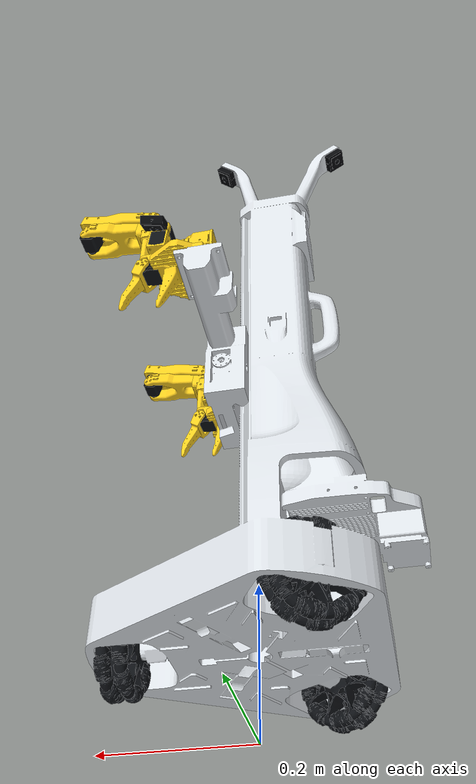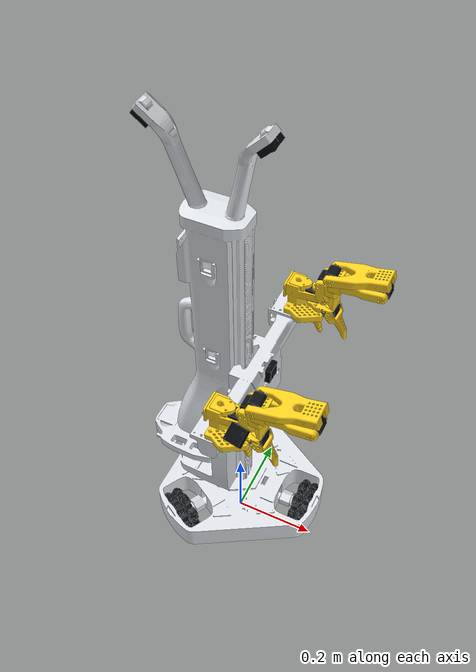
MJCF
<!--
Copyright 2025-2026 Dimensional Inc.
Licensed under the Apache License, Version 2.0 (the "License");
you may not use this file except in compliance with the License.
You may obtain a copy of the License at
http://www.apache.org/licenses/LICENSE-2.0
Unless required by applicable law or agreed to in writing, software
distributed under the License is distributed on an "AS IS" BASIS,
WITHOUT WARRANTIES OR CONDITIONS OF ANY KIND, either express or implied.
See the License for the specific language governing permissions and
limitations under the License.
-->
<!-- Reduced navigation-only model; the manipulation joints are intentionally rigid. -->
<mujoco model="alohamini2_nav">
  <compiler angle="radian" autolimits="true"/>
  <option timestep="0.005" gravity="0 0 -9.81" integrator="implicitfast"/>

  <visual>
    <global azimuth="135" elevation="-25"/>
    <headlight ambient="0.35 0.35 0.35" diffuse="0.7 0.7 0.7"/>
  </visual>

  <default>
    <geom condim="3" solref="0.01 1" solimp="0.9 0.95 0.001"/>
    <default class="cad_visual">
      <geom type="mesh" contype="0" conaffinity="0" group="2" mass="0"/>
    </default>
  </default>

  <asset>
    <material name="cad_white" rgba="0.88 0.9 0.92 1" specular="0.25" shininess="0.4"/>
    <material name="cad_dark" rgba="0.055 0.065 0.08 1" specular="0.2" shininess="0.3"/>
    <material name="cad_camera" rgba="0.025 0.03 0.04 1" specular="0.35" shininess="0.5"/>
    <material name="so101_yellow" rgba="1 0.82 0.12 1" specular="0.2" shininess="0.3"/>
    <mesh name="cad_base_link" file="meshes/base_link.stl"/>
    <mesh name="cad_vertical_link" file="meshes/vertical_link.stl"/>
    <mesh name="cad_chest_camera" file="meshes/chest_camera.stl"/>
    <mesh name="cad_wheel_2" file="meshes/link2_dp.stl"/>
    <mesh name="cad_wheel_3" file="meshes/link3_dp.stl"/>
    <mesh name="cad_wheel_4" file="meshes/link4_dp.stl"/>
    <mesh name="cad_back_camera" file="meshes/back_camera.stl"/>
    <mesh name="cad_front_camera" file="meshes/front_camera.stl"/>
    <mesh name="so101_base_motor_holder" file="meshes/so101_base_motor_holder_so101_v1.stl"/>
    <mesh name="so101_base" file="meshes/so101_base_so101_v2.stl"/>
    <mesh name="so101_motor_holder_base" file="meshes/so101_motor_holder_so101_base_v1.stl"/>
    <mesh name="so101_motor_holder_wrist" file="meshes/so101_motor_holder_so101_wrist_v1.stl"/>
    <mesh name="so101_moving_jaw" file="meshes/so101_moving_jaw_so101_v1.stl"/>
    <mesh name="so101_rotation_pitch" file="meshes/so101_rotation_pitch_so101_v1.stl"/>
    <mesh name="so101_servo_no_horn" file="meshes/so101_sts3215_03a_no_horn_v1.stl"/>
    <mesh name="so101_servo" file="meshes/so101_sts3215_03a_v1.stl"/>
    <mesh name="so101_under_arm" file="meshes/so101_under_arm_so101_v1.stl"/>
    <mesh name="so101_upper_arm" file="meshes/so101_upper_arm_so101_v1.stl"/>
    <mesh name="so101_mounting_plate" file="meshes/so101_waveshare_mounting_plate_so101_v2.stl"/>
    <mesh name="so101_wrist_roll_follower" file="meshes/so101_wrist_roll_follower_so101_v1.stl"/>
    <mesh name="so101_wrist_roll_pitch" file="meshes/so101_wrist_roll_pitch_so101_v2.stl"/>
    <mesh name="cad_wrist_camera" file="meshes/left_camera.stl"/>
  </asset>

  <worldbody>
    <!--
      The source URDF uses +X laterally and -Y forward. This reduced model is
      authored directly in the ROS/DimOS convention: +X forward, +Y left.
    -->
    <body name="base_link" pos="0 0 0.064">
      <freejoint name="root"/>
      <inertial pos="0 0 0.38" mass="18" diaginertia="1.9 1.7 0.8"/>

      <!-- Primitive collision envelope; the detailed CAD below is visual-only. -->
      <geom
        name="base_collision"
        type="box"
        pos="0 0 0.15"
        size="0.22 0.23 0.09"
        rgba="0 0 0 0"
      />
      <geom
        name="ground_skid_collision"
        type="box"
        pos="0 0 -0.014"
        size="0.17 0.17 0.05"
        rgba="0 0 0 0"
        friction="0.05 0.01 0.001"
      />
      <geom
        name="tower_collision"
        type="box"
        pos="-0.04 0 0.63"
        size="0.08 0.19 0.39"
        rgba="0 0 0 0"
      />
      <geom
        name="left_arm_collision"
        type="capsule"
        fromto="0.05 0.19 0.7 0.38 0.19 0.7"
        size="0.055"
        rgba="0 0 0 0"
      />
      <geom
        name="right_arm_collision"
        type="capsule"
        fromto="0.05 -0.19 0.7 0.38 -0.19 0.7"
        size="0.055"
        rgba="0 0 0 0"
      />

      <body name="cad_visual_frame" quat="0.707106781 0 0 0.707106781">
        <geom name="cad_base_link_visual" class="cad_visual" mesh="cad_base_link" material="cad_white"/>

        <body name="cad_vertical_link_body" pos="0 0 0.096196">
          <geom name="cad_vertical_link_visual" class="cad_visual" mesh="cad_vertical_link" material="cad_white"/>
          <body
            name="cad_chest_camera_body"
            pos="-0.000225761876 -0.0690163598 0.447985437"
            quat="0.5 0.5 0.5 -0.5"
          >
            <geom name="cad_chest_camera_visual" class="cad_visual" mesh="cad_chest_camera" material="cad_camera"/>
            <!-- Offset to the lens face; URDF +Z is optical forward. -->
            <camera name="chest_camera" pos="0 0 0.025" xyaxes="0 -1 0 -1 0 0" fovy="69"/>
          </body>

          <body name="cad_left_so101_base_body" pos="0.18726 -0.0599 0.4775" quat="0.707106781 0 0 -0.707106781">
            <geom name="cad_left_so101_base_holder_visual" class="cad_visual" mesh="so101_base_motor_holder" material="so101_yellow" pos="-0.00636471 -9.94414e-05 -0.0024" quat="0.5 0.5 0.5 0.5"/>
            <geom name="cad_left_so101_base_visual" class="cad_visual" mesh="so101_base" material="so101_yellow" pos="-0.00636471 -8.97657e-09 -0.0024" quat="0.5 0.5 0.5 0.5"/>
            <geom name="cad_left_so101_base_servo_visual" class="cad_visual" mesh="so101_servo" material="cad_dark" pos="0.0263353 -8.97657e-09 0.0437"/>
            <geom name="cad_left_so101_mounting_plate_visual" class="cad_visual" mesh="so101_mounting_plate" material="so101_yellow" pos="-0.0309827 -0.000199441 0.0474" quat="0.5 0.5 0.5 0.5"/>
            <body name="cad_left_so101_shoulder_body" pos="0.0388353 -8.97657e-09 0.0624" quat="3.56167e-16 1.22818e-15 -1 -4.14635e-16">
              <geom name="cad_left_so101_shoulder_servo_visual" class="cad_visual" mesh="so101_servo" material="cad_dark" pos="-0.0303992 0.000422241 -0.0417" quat="0.5 0.5 0.5 -0.5"/>
              <geom name="cad_left_so101_motor_holder_base_visual" class="cad_visual" mesh="so101_motor_holder_base" material="so101_yellow" pos="-0.0675992 -0.000177759 0.0158499" quat="0.5 0.5 -0.5 0.5"/>
              <geom name="cad_left_so101_rotation_pitch_visual" class="cad_visual" mesh="so101_rotation_pitch" material="so101_yellow" pos="0.0122008 2.22413e-05 0.0464" quat="0.707107 -0.707107 0 0"/>
              <body name="cad_left_so101_upper_arm_body" pos="-0.0303992 -0.0182778 -0.0542" quat="0.70214304 -0.70214304 -0.0836370253 -0.0836370253">
                <geom name="cad_left_so101_upper_arm_servo_visual" class="cad_visual" mesh="so101_servo" material="cad_dark" pos="-0.11257 -0.0155 0.0187" quat="0 -0.707107 0.707107 0"/>
                <geom name="cad_left_so101_upper_arm_visual" class="cad_visual" mesh="so101_upper_arm" material="so101_yellow" pos="-0.065085 0.012 0.0182" quat="0 1 0 0"/>
                <body name="cad_left_so101_lower_arm_body" pos="-0.11257 -0.028 0" quat="-0.0595665548 0 0 0.998224336">
                  <geom name="cad_left_so101_under_arm_visual" class="cad_visual" mesh="so101_under_arm" material="so101_yellow" pos="-0.0648499 -0.032 0.0182" quat="0 1 0 0"/>
                  <geom name="cad_left_so101_motor_holder_wrist_visual" class="cad_visual" mesh="so101_motor_holder_wrist" material="so101_yellow" pos="-0.0648499 -0.032 0.018" quat="0 1 0 0"/>
                  <geom name="cad_left_so101_lower_arm_servo_visual" class="cad_visual" mesh="so101_servo" material="cad_dark" pos="-0.1224 0.0052 0.0187" quat="0 0 1 0"/>
                  <body name="cad_left_so101_wrist_body" pos="-0.1349 0.0052 0" quat="0.0194019459 0 0 -0.999811765">
                    <geom name="cad_left_so101_wrist_servo_visual" class="cad_visual" mesh="so101_servo_no_horn" material="cad_dark" pos="0 -0.0424 0.0306" quat="0.5 0.5 0.5 -0.5"/>
                    <geom name="cad_left_so101_wrist_roll_pitch_visual" class="cad_visual" mesh="so101_wrist_roll_pitch" material="so101_yellow" pos="0 -0.028 0.0181" quat="0.5 -0.5 -0.5 -0.5"/>
                    <body name="cad_left_so101_gripper_body" pos="0 -0.0611 0.0181" quat="0.0172091082 -0.0172091082 0.706897338 0.706897338">
                      <geom name="cad_left_so101_gripper_servo_visual" class="cad_visual" mesh="so101_servo" material="cad_dark" pos="0.0077 0.0001 -0.0234" quat="0.707107 -0.707107 0 0" group="1"/>
                      <geom name="cad_left_so101_wrist_roll_follower_visual" class="cad_visual" mesh="so101_wrist_roll_follower" material="so101_yellow" pos="0 -0.000218214 0.000949706" quat="0 1 0 0" group="1"/>
                      <body name="cad_left_so101_moving_jaw_body" pos="0.0202 0.0188 -0.0234" quat="0.685124544 0.685124544 -0.174941017 0.174941017">
                        <geom name="cad_left_so101_moving_jaw_visual" class="cad_visual" mesh="so101_moving_jaw" material="so101_yellow" pos="0 0 0.0189" group="1"/>
                      </body>
                      <body name="cad_left_camera_body" pos="0 0.055 0.04" quat="0.292401601 0.952279812 0.0836905016 0.0256975275">
                        <geom name="cad_left_camera_visual" class="cad_visual" mesh="cad_wrist_camera" material="cad_camera"/>
                        <!-- The virtual pinhole sits on the physical camera mesh lens face. -->
                        <camera name="left_camera" pos="0 0 0.022" quat="0 1 0 0" fovy="90"/>
                      </body>
                    </body>
                  </body>
                </body>
              </body>
            </body>
          </body>

          <body name="cad_right_so101_base_body" pos="-0.18726 -0.0599 0.4775" quat="0.707106781 0 0 -0.707106781">
            <geom name="cad_right_so101_base_holder_visual" class="cad_visual" mesh="so101_base_motor_holder" material="so101_yellow" pos="-0.00636471 -9.94414e-05 -0.0024" quat="0.5 0.5 0.5 0.5"/>
            <geom name="cad_right_so101_base_visual" class="cad_visual" mesh="so101_base" material="so101_yellow" pos="-0.00636471 -8.97657e-09 -0.0024" quat="0.5 0.5 0.5 0.5"/>
            <geom name="cad_right_so101_base_servo_visual" class="cad_visual" mesh="so101_servo" material="cad_dark" pos="0.0263353 -8.97657e-09 0.0437"/>
            <geom name="cad_right_so101_mounting_plate_visual" class="cad_visual" mesh="so101_mounting_plate" material="so101_yellow" pos="-0.0309827 -0.000199441 0.0474" quat="0.5 0.5 0.5 0.5"/>
            <body name="cad_right_so101_shoulder_body" pos="0.0388353 -8.97657e-09 0.0624" quat="3.56167e-16 1.22818e-15 -1 -4.14635e-16">
              <geom name="cad_right_so101_shoulder_servo_visual" class="cad_visual" mesh="so101_servo" material="cad_dark" pos="-0.0303992 0.000422241 -0.0417" quat="0.5 0.5 0.5 -0.5"/>
              <geom name="cad_right_so101_motor_holder_base_visual" class="cad_visual" mesh="so101_motor_holder_base" material="so101_yellow" pos="-0.0675992 -0.000177759 0.0158499" quat="0.5 0.5 -0.5 0.5"/>
              <geom name="cad_right_so101_rotation_pitch_visual" class="cad_visual" mesh="so101_rotation_pitch" material="so101_yellow" pos="0.0122008 2.22413e-05 0.0464" quat="0.707107 -0.707107 0 0"/>
              <body name="cad_right_so101_upper_arm_body" pos="-0.0303992 -0.0182778 -0.0542" quat="0.70214304 -0.70214304 -0.0836370253 -0.0836370253">
                <geom name="cad_right_so101_upper_arm_servo_visual" class="cad_visual" mesh="so101_servo" material="cad_dark" pos="-0.11257 -0.0155 0.0187" quat="0 -0.707107 0.707107 0"/>
                <geom name="cad_right_so101_upper_arm_visual" class="cad_visual" mesh="so101_upper_arm" material="so101_yellow" pos="-0.065085 0.012 0.0182" quat="0 1 0 0"/>
                <body name="cad_right_so101_lower_arm_body" pos="-0.11257 -0.028 0" quat="-0.0595665548 0 0 0.998224336">
                  <geom name="cad_right_so101_under_arm_visual" class="cad_visual" mesh="so101_under_arm" material="so101_yellow" pos="-0.0648499 -0.032 0.0182" quat="0 1 0 0"/>
                  <geom name="cad_right_so101_motor_holder_wrist_visual" class="cad_visual" mesh="so101_motor_holder_wrist" material="so101_yellow" pos="-0.0648499 -0.032 0.018" quat="0 1 0 0"/>
                  <geom name="cad_right_so101_lower_arm_servo_visual" class="cad_visual" mesh="so101_servo" material="cad_dark" pos="-0.1224 0.0052 0.0187" quat="0 0 1 0"/>
                  <body name="cad_right_so101_wrist_body" pos="-0.1349 0.0052 0" quat="0.0194019459 0 0 -0.999811765">
                    <geom name="cad_right_so101_wrist_servo_visual" class="cad_visual" mesh="so101_servo_no_horn" material="cad_dark" pos="0 -0.0424 0.0306" quat="0.5 0.5 0.5 -0.5"/>
                    <geom name="cad_right_so101_wrist_roll_pitch_visual" class="cad_visual" mesh="so101_wrist_roll_pitch" material="so101_yellow" pos="0 -0.028 0.0181" quat="0.5 -0.5 -0.5 -0.5"/>
                    <body name="cad_right_so101_gripper_body" pos="0 -0.0611 0.0181" quat="0.0172091082 -0.0172091082 0.706897338 0.706897338">
                      <geom name="cad_right_so101_gripper_servo_visual" class="cad_visual" mesh="so101_servo" material="cad_dark" pos="0.0077 0.0001 -0.0234" quat="0.707107 -0.707107 0 0" group="1"/>
                      <geom name="cad_right_so101_wrist_roll_follower_visual" class="cad_visual" mesh="so101_wrist_roll_follower" material="so101_yellow" pos="0 -0.000218214 0.000949706" quat="0 1 0 0" group="1"/>
                      <body name="cad_right_so101_moving_jaw_body" pos="0.0202 0.0188 -0.0234" quat="0.685124544 0.685124544 -0.174941017 0.174941017">
                        <geom name="cad_right_so101_moving_jaw_visual" class="cad_visual" mesh="so101_moving_jaw" material="so101_yellow" pos="0 0 0.0189" group="1"/>
                      </body>
                      <body name="cad_right_camera_body" pos="0 -0.055 0.04" quat="0.0258352466 0.0856592708 0.953562688 0.287599077">
                        <geom name="cad_right_camera_visual" class="cad_visual" mesh="cad_wrist_camera" material="cad_camera"/>
                        <!-- The virtual pinhole sits on the physical camera mesh lens face. -->
                        <camera name="right_camera" pos="0 0 0.022" quat="0 1 0 0" fovy="90"/>
                      </body>
                    </body>
                  </body>
                </body>
              </body>
            </body>
          </body>
        </body>

        <body
          name="cad_wheel_2_body"
          pos="-0.1337 0.076522 0.063355"
          quat="0.183030835 -0.682977308 0.183013207 0.6830431"
        >
          <geom name="cad_wheel_2_visual" class="cad_visual" mesh="cad_wheel_2" material="cad_dark"/>
        </body>
        <body
          name="cad_wheel_3_body"
          pos="-0.0014342 -0.15301 0.063355"
          quat="0.499998163 0.5 0.5 -0.500001837"
        >
          <geom name="cad_wheel_3_visual" class="cad_visual" mesh="cad_wheel_3" material="cad_dark"/>
        </body>
        <body
          name="cad_wheel_4_body"
          pos="0.13115 0.076408 0.063355"
          quat="0.612370878 -0.612373127 0.35355479 -0.353553491"
        >
          <geom name="cad_wheel_4_visual" class="cad_visual" mesh="cad_wheel_4" material="cad_dark"/>
        </body>
        <body
          name="cad_back_camera_body"
          pos="0.00034085 0.16827 1.0972"
          quat="0.220512875 -0.671842685 -0.671843532 -0.220517"
        >
          <geom name="cad_back_camera_visual" class="cad_visual" mesh="cad_back_camera" material="cad_camera"/>
          <camera name="back_camera" pos="0 0 0.025" xyaxes="0 -1 0 -1 0 0" fovy="69"/>
        </body>
        <body
          name="cad_front_camera_body"
          pos="0.000309285648 -0.0549084505 1.10145848"
          quat="-0.270593972 -0.653283172 -0.653283172 0.270593972"
        >
          <geom name="cad_front_camera_visual" class="cad_visual" mesh="cad_front_camera" material="cad_camera"/>
          <camera name="front_camera" pos="0 0 0.025" xyaxes="0 -1 0 -1 0 0" fovy="69"/>
        </body>
      </body>

      <!-- MuJoCo cameras look along their local -Z axis. -->
      <camera name="nav_front" pos="0.24 0 0.58" xyaxes="0 -1 0 0 0 1" fovy="90"/>
      <camera name="nav_left" pos="0 0.25 0.58" xyaxes="1 0 0 0 0 1" fovy="90"/>
      <camera name="nav_back" pos="-0.15 0 0.58" xyaxes="0 1 0 0 0 1" fovy="90"/>
      <camera name="nav_right" pos="0 -0.25 0.58" xyaxes="-1 0 0 0 0 1" fovy="90"/>

      <site name="imu_site" pos="0 0 0.3" size="0.01"/>
    </body>
  </worldbody>

  <sensor>
    <gyro name="imu_gyro" site="imu_site"/>
    <accelerometer name="imu_accel" site="imu_site"/>
  </sensor>
</mujoco>
